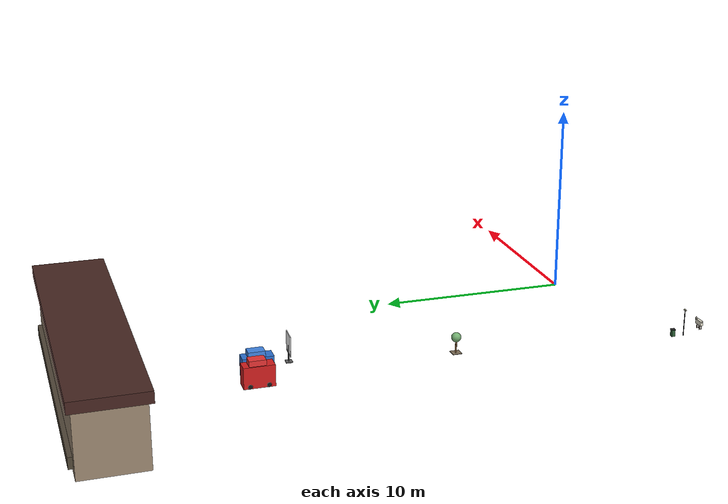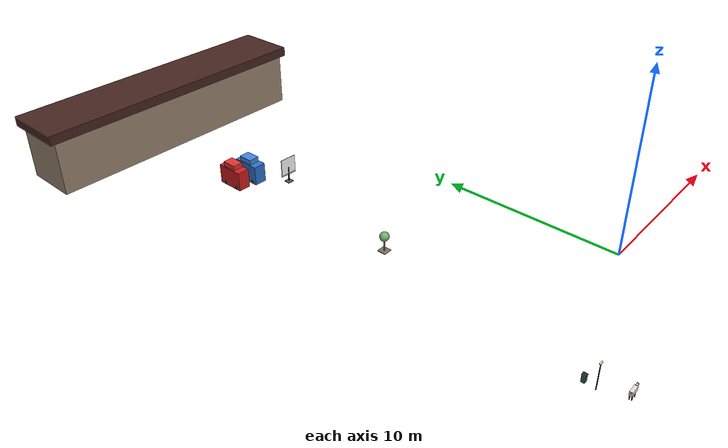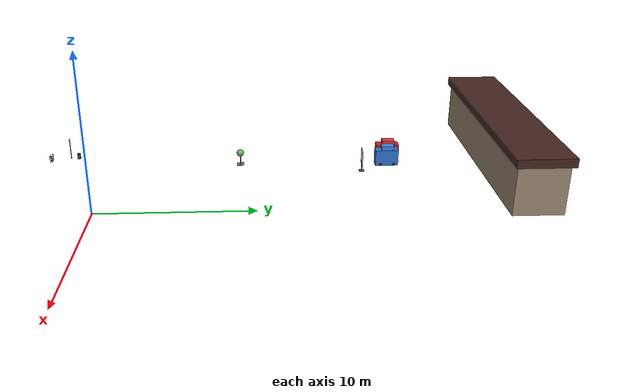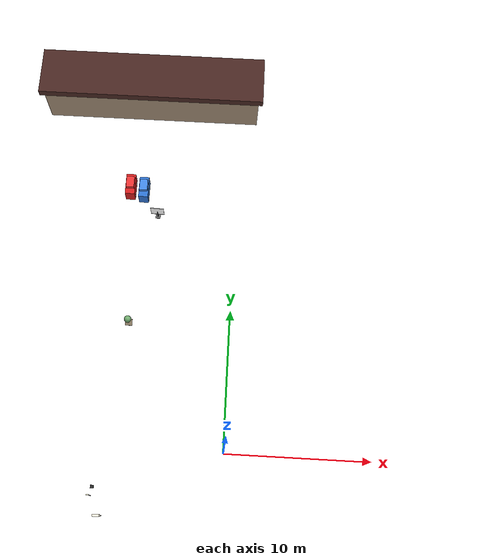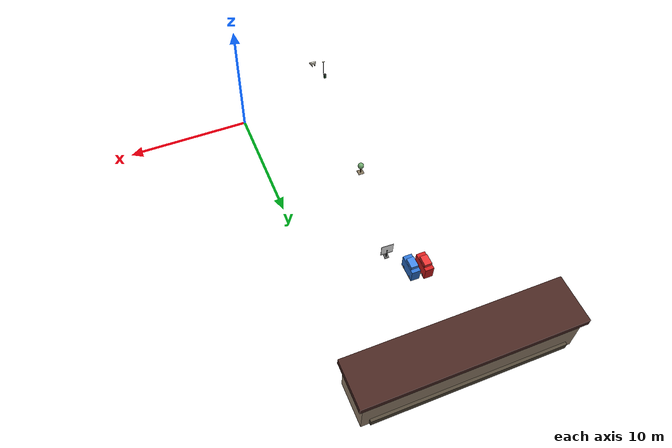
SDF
<sdf version="1.10">
 <world name="city">
  <model name="pharmacy_cross">
   <static>true</static>
   <pose>-9.28 3.2 0 0 0 0</pose>
   <link name="link">
    <inertial>
     <mass>1</mass>
     <inertia><ixx>1</ixx><ixy>0</ixy><ixz>0</ixz><iyy>1</iyy><iyz>0</iyz><izz>1</izz></inertia>
    </inertial>
    <link name="link">
     <visual name="vert">
      <pose>0 0 2.56 0 0 0</pose>
      <geometry><box><size>0.2 0.072 0.88</size></box></geometry>
      <material>
       <ambient>0.120 0.760 0.220 1.000</ambient>
       <diffuse>0.120 0.760 0.220 1.000</diffuse>
       <specular>0.08 0.08 0.08 1</specular>
      </material>
     </visual>
     <visual name="hori">
      <pose>0 0 2.56 0 0 0</pose>
      <geometry><box><size>0.6 0.072 0.2</size></box></geometry>
      <material>
       <ambient>0.120 0.760 0.220 1.000</ambient>
       <diffuse>0.120 0.760 0.220 1.000</diffuse>
       <specular>0.08 0.08 0.08 1</specular>
      </material>
     </visual>
    </link>
   </link>
  </model>
  <model name="tree_12">
   <static>true</static>
   <pose>-7.2 8.8 0 0 0 0</pose>
   <link name="link">
    <collision name="soil_col">
     <pose>0 0 0.012 0 0 0</pose>
     <geometry><box><size>0.48 0.48 0.024</size></box></geometry>
    </collision>
    <visual name="soil_vis">
     <pose>0 0 0.012 0 0 0</pose>
     <geometry><box><size>0.48 0.48 0.024</size></box></geometry>
     <material>
      <ambient>0.5 0.439999998 0.349999994 1</ambient>
      <diffuse>0.5 0.439999998 0.349999994 1</diffuse>
      <specular>0.0799999982 0.0799999982 0.0799999982 1</specular>
     </material>
    </visual>
    <collision name="trunk_col">
     <pose>0 0 0.36 0 0 0</pose>
     <geometry><cylinder><radius>0.04</radius><length>0.72</length></cylinder></geometry>
    </collision>
    <visual name="trunk_vis">
     <pose>0 0 0.36 0 0 0</pose>
     <geometry><cylinder><radius>0.04</radius><length>0.72</length></cylinder></geometry>
     <material>
      <ambient>0.449999988 0.310000002 0.180000007 1</ambient>
      <diffuse>0.449999988 0.310000002 0.180000007 1</diffuse>
      <specular>0.0799999982 0.0799999982 0.0799999982 1</specular>
     </material>
    </visual>
    <visual name="crown_vis">
     <pose>0 0 0.84 0 0 0</pose>
     <geometry><sphere><radius>0.248</radius></sphere></geometry>
     <material>
      <ambient>0.449999988 0.680000007 0.439999998 1</ambient>
      <diffuse>0.449999988 0.680000007 0.439999998 1</diffuse>
      <specular>0.0799999982 0.0799999982 0.0799999982 1</specular>
     </material>
    </visual>
    <inertial>
     <mass>1</mass>
     <inertia><ixx>1</ixx><ixy>0</ixy><ixz>0</ixz><iyy>1</iyy><iyz>0</iyz><izz>1</izz></inertia>
    </inertial>
   </link>
  </model>
  <model name="lamp_7">
   <static>true</static>
   <pose>-8.68143997192383 -3.19626560211182 0 0 0 0</pose>
   <link name="link">
    <collision name="pole_col">
     <pose>0 0 0.68 0 0 0</pose>
     <geometry><cylinder><radius>0.02</radius><length>1.36</length></cylinder></geometry>
    </collision>
    <visual name="pole_vis">
     <pose>0 0 0.68 0 0 0</pose>
     <geometry><cylinder><radius>0.02</radius><length>1.36</length></cylinder></geometry>
     <material>
      <ambient>0.25 0.25 0.270000011 1</ambient>
      <diffuse>0.25 0.25 0.270000011 1</diffuse>
      <specular>0.0799999982 0.0799999982 0.0799999982 1</specular>
     </material>
    </visual>
    <visual name="head_vis">
     <pose>0 0 1.408 0 0 0</pose>
     <geometry><box><size>0.2 0.072 0.04</size></box></geometry>
     <material>
      <ambient>0.920000017 0.910000026 0.779999971 1</ambient>
      <diffuse>0.920000017 0.910000026 0.779999971 1</diffuse>
      <specular>0.0799999982 0.0799999982 0.0799999982 1</specular>
     </material>
    </visual>
    <inertial>
     <mass>1</mass>
     <inertia><ixx>1</ixx><ixy>0</ixy><ixz>0</ixz><iyy>1</iyy><iyz>0</iyz><izz>1</izz></inertia>
    </inertial>
   </link>
  </model>
  <model name="bin_1">
   <static>true</static>
   <pose>-8.59767990112305 -2.6296745300293 0 0 0 0</pose>
   <link name="link">
    <visual name="body">
     <pose>0 0 0.18 0 0 0</pose>
     <geometry><box><size>0.18 0.18 0.36</size></box></geometry>
     <material>
      <ambient>0.180000007 0.379999995 0.219999999 1</ambient>
      <diffuse>0.180000007 0.379999995 0.219999999 1</diffuse>
      <specular>0.0799999982 0.0799999982 0.0799999982 1</specular>
     </material>
    </visual>
    <visual name="lid">
     <pose>0 0 0.368 0 0 0</pose>
     <geometry><box><size>0.208 0.208 0.032</size></box></geometry>
     <material>
      <ambient>0.150000006 0.150000006 0.150000006 1</ambient>
      <diffuse>0.150000006 0.150000006 0.150000006 1</diffuse>
      <specular>0.0799999982 0.0799999982 0.0799999982 1</specular>
     </material>
    </visual>
    <inertial>
     <mass>1</mass>
     <inertia><ixx>1</ixx><ixy>0</ixy><ixz>0</ixz><iyy>1</iyy><iyz>0</iyz><izz>1</izz></inertia>
    </inertial>
   </link>
  </model>
  <model name="pharmacy_qr_sign">
   <static>true</static>
   <pose>-5.74360809326172 17.0612442016602 0 0 0 1.5297500017933</pose>
   <link name="link">
    <collision name="post_col">
     <pose>0 0 0.46 0 0 0</pose>
     <geometry><box><size>0.056 0.056 0.92</size></box></geometry>
    </collision>
    <visual name="post_vis">
     <pose>0 0 0.46 0 0 0</pose>
     <geometry><box><size>0.056 0.056 0.92</size></box></geometry>
     <material>
      <ambient>0.239999995 0.239999995 0.239999995 1</ambient>
      <diffuse>0.239999995 0.239999995 0.239999995 1</diffuse>
      <specular>0.0799999982 0.0799999982 0.0799999982 1</specular>
     </material>
    </visual>
    <collision name="base_col">
     <pose>0 0 0.024 0 0 0</pose>
     <geometry><box><size>0.34 0.34 0.048</size></box></geometry>
    </collision>
    <visual name="base_vis">
     <pose>0 0 0.024 0 0 0</pose>
     <geometry><box><size>0.34 0.34 0.048</size></box></geometry>
     <material>
      <ambient>0.379999995 0.379999995 0.379999995 1</ambient>
      <diffuse>0.379999995 0.379999995 0.379999995 1</diffuse>
      <specular>0.0799999982 0.0799999982 0.0799999982 1</specular>
     </material>
    </visual>
    <visual name="back_vis">
     <pose>0 0 0.48 0 0 0</pose>
     <geometry><box><size>0.024 1.02 0.06</size></box></geometry>
     <material>
      <ambient>0.920000017 0.920000017 0.920000017 1</ambient>
      <diffuse>0.920000017 0.920000017 0.920000017 1</diffuse>
      <specular>0.0500000007 0.0500000007 0.0500000007 1</specular>
     </material>
    </visual>
    <visual name="qr_vis">
     <pose>0 0 1.02 0 0 0</pose>
     <geometry><box><size>0.04 0.96 0.96</size></box></geometry>
     <material>
      <ambient>1 1 1 1</ambient>
      <diffuse>1 1 1 1</diffuse>
      <specular>0.0500000007 0.0500000007 0.0500000007 1</specular>
      <pbr><metal><metalness>0.0</metalness><roughness>1.0</roughness></metal></pbr>
     </material>
    </visual>
    <inertial>
     <mass>1</mass>
     <inertia><ixx>1</ixx><ixy>0</ixy><ixz>0</ixz><iyy>1</iyy><iyz>0</iyz><izz>1</izz></inertia>
    </inertial>
   </link>
  </model>
  <model name="gallery_long_rowhouse_strip_1">
   <static>true</static>
   <pose>-6.69484764725151 26.7838440655578 0 0 0 0</pose>
   <link name="body">
    <collision name="collision">
     <pose>0 0 1.6 0 0 0</pose>
     <geometry><box><size>16 3.2 3.2</size></box></geometry>
    </collision>
    <visual name="main">
     <pose>0 0 1.6 0 0 0</pose>
     <geometry><box><size>16 3.2 3.2</size></box></geometry>
     <material>
      <ambient>0.620000005 0.540000021 0.449999988 1</ambient>
      <diffuse>0.620000005 0.540000021 0.449999988 1</diffuse>
      <specular>0.0500000007 0.0500000007 0.0500000007 1</specular>
     </material>
    </visual>
    <visual name="roof">
     <pose>0 0 3.48 0 0 0</pose>
     <geometry><box><size>16.6 3.6 0.56</size></box></geometry>
     <material>
      <ambient>0.280000001 0.150000006 0.129999995 1</ambient>
      <diffuse>0.280000001 0.150000006 0.129999995 1</diffuse>
      <specular>0.0399999991 0.0399999991 0.0399999991 1</specular>
     </material>
    </visual>
    <visual name="porch_line">
     <pose>0 1.68 0.56 0 0 0</pose>
     <geometry><box><size>14.8 0.28 0.56</size></box></geometry>
     <material>
      <ambient>0.319999993 0.280000001 0.219999999 1</ambient>
      <diffuse>0.319999993 0.280000001 0.219999999 1</diffuse>
      <specular>0.0299999993 0.0299999993 0.0299999993 1</specular>
     </material>
    </visual>
    <inertial>
     <mass>1</mass>
     <inertia><ixx>1</ixx><ixy>0</ixy><ixz>0</ixz><iyy>1</iyy><iyz>0</iyz><izz>1</izz></inertia>
    </inertial>
   </link>
  </model>
  <model name="gallery_goat_placeholder_1_2">
   <static>true</static>
   <pose>-8.14204025268555 -4.42625732421875 0 0 0 0</pose>
   <link name="goat">
    <collision name="body_collision">
     <pose>0 0 0.36 0 0 0</pose>
     <geometry><box><size>0.48 0.152 0.24</size></box></geometry>
    </collision>
    <collision name="head_collision">
     <pose>0.28 0 0.448 0 0 0</pose>
     <geometry><box><size>0.14 0.088 0.112</size></box></geometry>
    </collision>
    <collision name="leg1_collision">
     <pose>-0.14 0.052 0.152 0 0 0</pose>
     <geometry><cylinder><radius>0.02</radius><length>0.304</length></cylinder></geometry>
    </collision>
    <collision name="leg2_collision">
     <pose>-0.14 -0.052 0.152 0 0 0</pose>
     <geometry><cylinder><radius>0.02</radius><length>0.304</length></cylinder></geometry>
    </collision>
    <collision name="leg3_collision">
     <pose>0.112 0.052 0.152 0 0 0</pose>
     <geometry><cylinder><radius>0.02</radius><length>0.304</length></cylinder></geometry>
    </collision>
    <collision name="leg4_collision">
     <pose>0.112 -0.052 0.152 0 0 0</pose>
     <geometry><cylinder><radius>0.02</radius><length>0.304</length></cylinder></geometry>
    </collision>
    <visual name="body_visual">
     <pose>0 0 0.36 0 0 0</pose>
     <geometry><box><size>0.48 0.152 0.24</size></box></geometry>
     <material>
      <ambient>0.930000007 0.910000026 0.839999974 1</ambient>
      <diffuse>0.930000007 0.910000026 0.839999974 1</diffuse>
      <specular>0.0500000007 0.0500000007 0.0500000007 1</specular>
     </material>
    </visual>
    <visual name="head_visual">
     <pose>0.28 0 0.448 0 0 0</pose>
     <geometry><box><size>0.14 0.088 0.112</size></box></geometry>
     <material>
      <ambient>0.930000007 0.910000026 0.839999974 1</ambient>
      <diffuse>0.930000007 0.910000026 0.839999974 1</diffuse>
      <specular>0.0500000007 0.0500000007 0.0500000007 1</specular>
     </material>
    </visual>
    <visual name="leg1_visual">
     <pose>-0.14 0.052 0.152 0 0 0</pose>
     <geometry><cylinder><radius>0.02</radius><length>0.304</length></cylinder></geometry>
     <material>
      <ambient>0.349999994 0.270000011 0.180000007 1</ambient>
      <diffuse>0.349999994 0.270000011 0.180000007 1</diffuse>
     </material>
    </visual>
    <visual name="leg2_visual">
     <pose>-0.14 -0.052 0.152 0 0 0</pose>
     <geometry><cylinder><radius>0.02</radius><length>0.304</length></cylinder></geometry>
     <material>
      <ambient>0.349999994 0.270000011 0.180000007 1</ambient>
      <diffuse>0.349999994 0.270000011 0.180000007 1</diffuse>
     </material>
    </visual>
    <visual name="leg3_visual">
     <pose>0.112 0.052 0.152 0 0 0</pose>
     <geometry><cylinder><radius>0.02</radius><length>0.304</length></cylinder></geometry>
     <material>
      <ambient>0.349999994 0.270000011 0.180000007 1</ambient>
      <diffuse>0.349999994 0.270000011 0.180000007 1</diffuse>
     </material>
    </visual>
    <visual name="leg4_visual">
     <pose>0.112 -0.052 0.152 0 0 0</pose>
     <geometry><cylinder><radius>0.02</radius><length>0.304</length></cylinder></geometry>
     <material>
      <ambient>0.349999994 0.270000011 0.180000007 1</ambient>
      <diffuse>0.349999994 0.270000011 0.180000007 1</diffuse>
     </material>
    </visual>
    <visual name="horn_left">
     <pose>0.312 0.028 0.516 0.35 0 0.25</pose>
     <geometry><cylinder><radius>0.01</radius><length>0.08</length></cylinder></geometry>
     <material>
      <ambient>0.300000012 0.230000004 0.170000002 1</ambient>
      <diffuse>0.300000012 0.230000004 0.170000002 1</diffuse>
     </material>
    </visual>
    <visual name="horn_right">
     <pose>0.312 -0.028 0.516 -0.35 0 -0.25</pose>
     <geometry><cylinder><radius>0.01</radius><length>0.08</length></cylinder></geometry>
     <material>
      <ambient>0.300000012 0.230000004 0.170000002 1</ambient>
      <diffuse>0.300000012 0.230000004 0.170000002 1</diffuse>
     </material>
    </visual>
    <visual name="tail">
     <pose>-0.256 0 0.44 0 0 0.5</pose>
     <geometry><box><size>0.048 0.012 0.072</size></box></geometry>
     <material>
      <ambient>0.930000007 0.910000026 0.839999974 1</ambient>
      <diffuse>0.930000007 0.910000026 0.839999974 1</diffuse>
     </material>
    </visual>
    <inertial>
     <mass>1</mass>
     <inertia><ixx>1</ixx><ixy>0</ixy><ixz>0</ixz><iyy>1</iyy><iyz>0</iyz><izz>1</izz></inertia>
    </inertial>
   </link>
  </model>
  <model name="car_8_1">
   <static>true</static>
   <pose>-7.89469223022 19.1035171509 0 0 0 1.57080003572</pose>
   <link name="link">
    <collision name="body_col">
     <pose>0 0 0.55125 0 0 0</pose>
     <geometry><box><size>1.56 0.7 1.1025</size></box></geometry>
    </collision>
    <collision name="cab_col">
     <pose>0.06 0 0.866 0 0 0</pose>
     <geometry><box><size>0.84 0.58 1.0395</size></box></geometry>
    </collision>
    <visual name="body_vis">
     <pose>0 0 0.55125 0 0 0</pose>
     <geometry><box><size>1.56 0.7 1.1025</size></box></geometry>
     <material>
      <ambient>0.829999983 0.119999997 0.119999997 1</ambient>
      <diffuse>0.829999983 0.119999997 0.119999997 1</diffuse>
      <specular>0.0799999982 0.0799999982 0.0799999982 1</specular>
     </material>
    </visual>
    <visual name="cab_vis">
     <pose>0.06 0 0.866 0 0 0</pose>
     <geometry><box><size>0.84 0.58 1.0395</size></box></geometry>
     <material>
      <ambient>0.910000026 0.200000003 0.200000003 1</ambient>
      <diffuse>0.910000026 0.200000003 0.200000003 1</diffuse>
      <specular>0.0799999982 0.0799999982 0.0799999982 1</specular>
     </material>
    </visual>
    <visual name="glass_vis">
     <pose>0.08 0 0.854 0 0 0</pose>
     <geometry><box><size>0.76 0.528 0.8505</size></box></geometry>
     <material>
      <ambient>0.550000012 0.720000029 0.879999995 0.550000012</ambient>
      <diffuse>0.550000012 0.720000029 0.879999995 0.550000012</diffuse>
      <specular>0.0799999982 0.0799999982 0.0799999982 1</specular>
      <transparency>0.35</transparency>
     </material>
    </visual>
    <visual name="wheel_-1.15_-0.82">
     <pose>-0.46 -0.328 0.11 1.5708 0 0</pose>
     <geometry><cylinder><radius>0.112</radius><length>0.072</length></cylinder></geometry>
     <material>
      <ambient>0.0799999982 0.0799999982 0.0799999982 1</ambient>
      <diffuse>0.0799999982 0.0799999982 0.0799999982 1</diffuse>
      <specular>0.0799999982 0.0799999982 0.0799999982 1</specular>
     </material>
    </visual>
    <visual name="wheel_-1.15_0.82">
     <pose>-0.46 0.328 0.11 1.5708 0 0</pose>
     <geometry><cylinder><radius>0.112</radius><length>0.072</length></cylinder></geometry>
     <material>
      <ambient>0.0799999982 0.0799999982 0.0799999982 1</ambient>
      <diffuse>0.0799999982 0.0799999982 0.0799999982 1</diffuse>
      <specular>0.0799999982 0.0799999982 0.0799999982 1</specular>
     </material>
    </visual>
    <visual name="wheel_1.15_-0.82">
     <pose>0.46 -0.328 0.11 1.5708 0 0</pose>
     <geometry><cylinder><radius>0.112</radius><length>0.072</length></cylinder></geometry>
     <material>
      <ambient>0.0799999982 0.0799999982 0.0799999982 1</ambient>
      <diffuse>0.0799999982 0.0799999982 0.0799999982 1</diffuse>
      <specular>0.0799999982 0.0799999982 0.0799999982 1</specular>
     </material>
    </visual>
    <visual name="wheel_1.15_0.82">
     <pose>0.46 0.328 0.11 1.5708 0 0</pose>
     <geometry><cylinder><radius>0.112</radius><length>0.072</length></cylinder></geometry>
     <material>
      <ambient>0.0799999982 0.0799999982 0.0799999982 1</ambient>
      <diffuse>0.0799999982 0.0799999982 0.0799999982 1</diffuse>
      <specular>0.0799999982 0.0799999982 0.0799999982 1</specular>
     </material>
    </visual>
    <inertial>
     <mass>1</mass>
     <inertia><ixx>1</ixx><ixy>0</ixy><ixz>0</ixz><iyy>1</iyy><iyz>0</iyz><izz>1</izz></inertia>
    </inertial>
   </link>
  </model>
  <model name="car_9_1">
   <static>true</static>
   <pose>-6.88936920166 18.9162521362 0 0 0 1.57080003572</pose>
   <link name="link">
    <collision name="body_col">
     <pose>0 0 0.55125 0 0 0</pose>
     <geometry><box><size>1.56 0.7 1.1025</size></box></geometry>
    </collision>
    <collision name="cab_col">
     <pose>0.06 0 0.866 0 0 0</pose>
     <geometry><box><size>0.84 0.58 1.0395</size></box></geometry>
    </collision>
    <visual name="body_vis">
     <pose>0 0 0.55125 0 0 0</pose>
     <geometry><box><size>1.56 0.7 1.1025</size></box></geometry>
     <material>
      <ambient>0.180000007 0.449999988 0.819999993 1</ambient>
      <diffuse>0.180000007 0.449999988 0.819999993 1</diffuse>
      <specular>0.0799999982 0.0799999982 0.0799999982 1</specular>
     </material>
    </visual>
    <visual name="cab_vis">
     <pose>0.06 0 0.866 0 0 0</pose>
     <geometry><box><size>0.84 0.58 1.0395</size></box></geometry>
     <material>
      <ambient>0.25999999 0.529999971 0.899999976 1</ambient>
      <diffuse>0.25999999 0.529999971 0.899999976 1</diffuse>
      <specular>0.0799999982 0.0799999982 0.0799999982 1</specular>
     </material>
    </visual>
    <visual name="glass_vis">
     <pose>0.08 0 0.854 0 0 0</pose>
     <geometry><box><size>0.76 0.528 0.8505</size></box></geometry>
     <material>
      <ambient>0.550000012 0.720000029 0.879999995 0.550000012</ambient>
      <diffuse>0.550000012 0.720000029 0.879999995 0.550000012</diffuse>
      <specular>0.0799999982 0.0799999982 0.0799999982 1</specular>
      <transparency>0.35</transparency>
     </material>
    </visual>
    <visual name="wheel_-1.15_-0.82">
     <pose>-0.46 -0.328 0.11 1.5708 0 0</pose>
     <geometry><cylinder><radius>0.112</radius><length>0.072</length></cylinder></geometry>
     <material>
      <ambient>0.0799999982 0.0799999982 0.0799999982 1</ambient>
      <diffuse>0.0799999982 0.0799999982 0.0799999982 1</diffuse>
      <specular>0.0799999982 0.0799999982 0.0799999982 1</specular>
     </material>
    </visual>
    <visual name="wheel_-1.15_0.82">
     <pose>-0.46 0.328 0.11 1.5708 0 0</pose>
     <geometry><cylinder><radius>0.112</radius><length>0.072</length></cylinder></geometry>
     <material>
      <ambient>0.0799999982 0.0799999982 0.0799999982 1</ambient>
      <diffuse>0.0799999982 0.0799999982 0.0799999982 1</diffuse>
      <specular>0.0799999982 0.0799999982 0.0799999982 1</specular>
     </material>
    </visual>
    <visual name="wheel_1.15_-0.82">
     <pose>0.46 -0.328 0.11 1.5708 0 0</pose>
     <geometry><cylinder><radius>0.112</radius><length>0.072</length></cylinder></geometry>
     <material>
      <ambient>0.0799999982 0.0799999982 0.0799999982 1</ambient>
      <diffuse>0.0799999982 0.0799999982 0.0799999982 1</diffuse>
      <specular>0.0799999982 0.0799999982 0.0799999982 1</specular>
     </material>
    </visual>
    <visual name="wheel_1.15_0.82">
     <pose>0.46 0.328 0.11 1.5708 0 0</pose>
     <geometry><cylinder><radius>0.112</radius><length>0.072</length></cylinder></geometry>
     <material>
      <ambient>0.0799999982 0.0799999982 0.0799999982 1</ambient>
      <diffuse>0.0799999982 0.0799999982 0.0799999982 1</diffuse>
      <specular>0.0799999982 0.0799999982 0.0799999982 1</specular>
     </material>
    </visual>
    <inertial>
     <mass>1</mass>
     <inertia><ixx>1</ixx><ixy>0</ixy><ixz>0</ixz><iyy>1</iyy><iyz>0</iyz><izz>1</izz></inertia>
    </inertial>
   </link>
  </model>
 </world>
</sdf>
